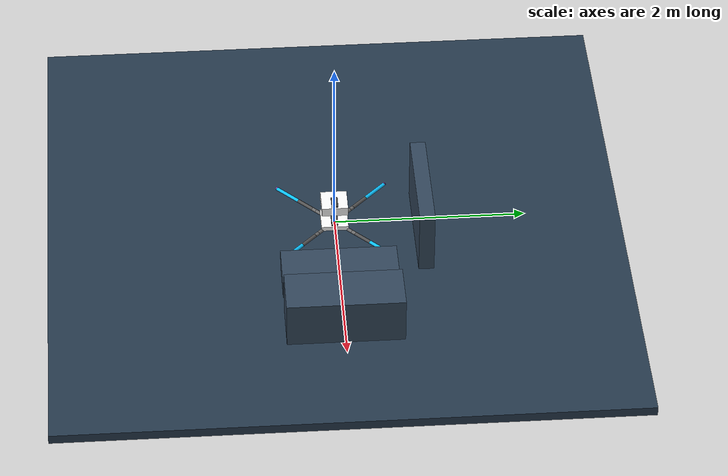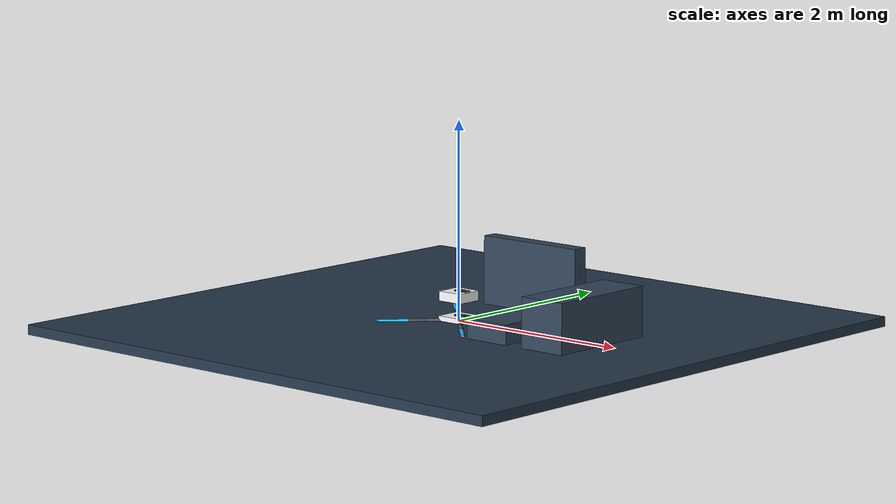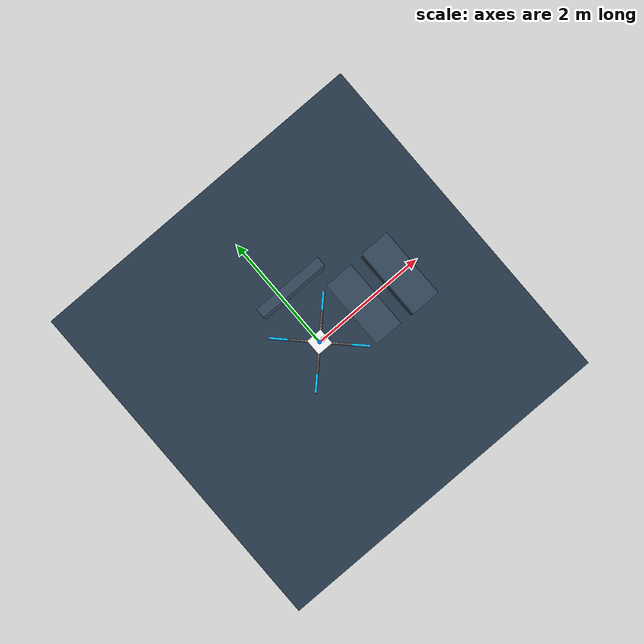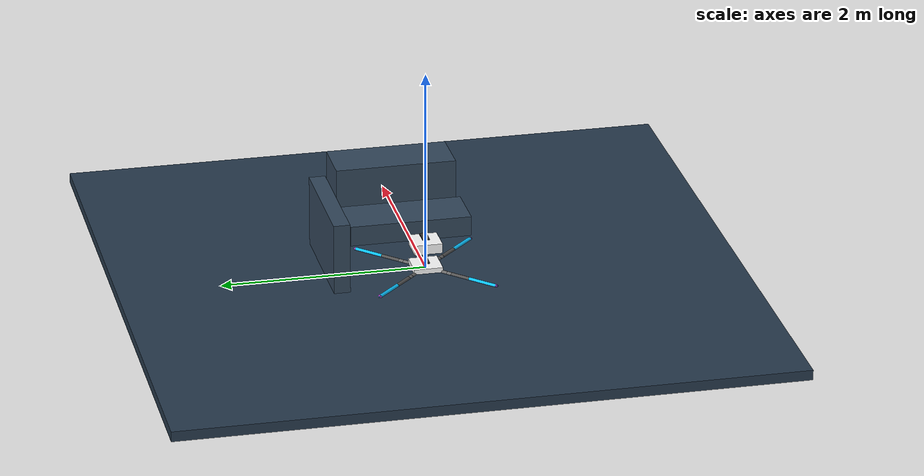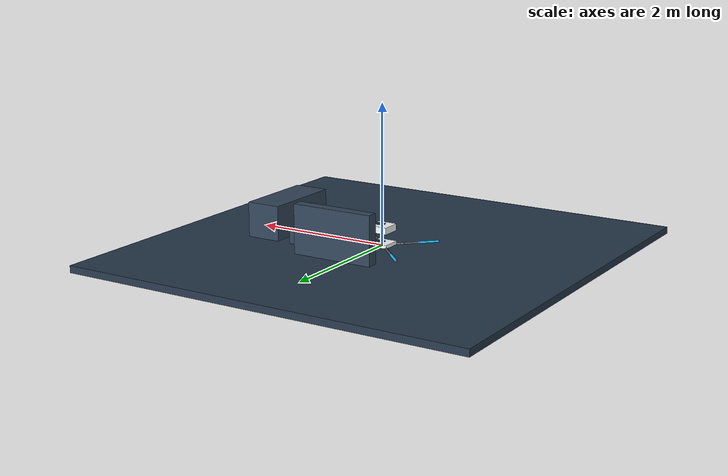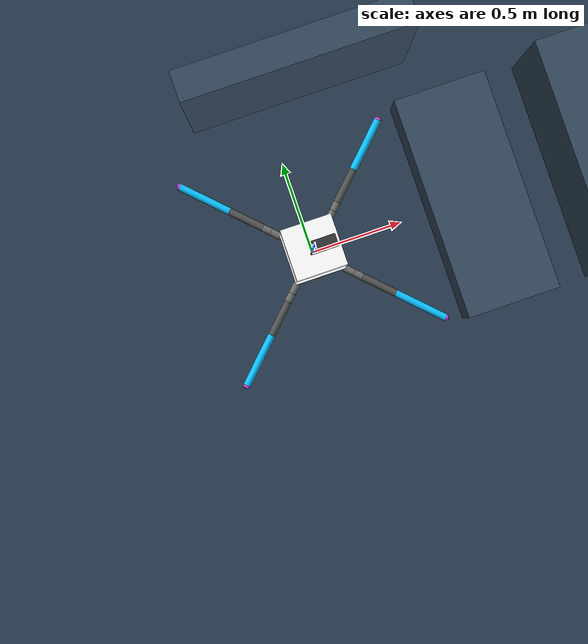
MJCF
<mujoco model="robot">
  <compiler angle="radian" autolimits="true"/>
  <default>
    <geom contype="0" conaffinity="0"/>
    <joint type="hinge"/>
    <default class="link"><geom type="capsule" size="0.02"/></default>
    <default class="foot"><geom type="sphere" size="0.02" material="foot"/></default>
    <default class="base"><geom type="box" material="base"/></default>
    <default class="j0"><joint axis="0 0 1" range="-1.57079637 1.57079637"/></default>
    <default class="j1"><joint axis="1 0 0" range="-3.14159274 3.14159274"/></default>
    <default class="j2"><joint axis="0 1 0" range="-2.61799383 2.61799383"/></default>
    <default class="j3"><joint axis="0 1 0" range="-2.61799383 2.61799383"/></default>
  </default>
  <asset>
    <material name="base"  rgba="1 1 1 1"/>
    <material name="coxa"  rgba="0.42 0.42 0.42 1"/>
    <material name="femur" rgba="0.32 0.32 0.32 1"/>
    <material name="tibia" rgba="0.039216 0.760784 1 1"/>
    <material name="foot"  rgba="1 0.258824 0.976471 1"/>
    <material name="terrain" rgba="0.2 0.28 0.36 1"/>
    <texture type="skybox" builtin="gradient" rgb1="0.3 0.5 0.7" rgb2="0 0 0" width="512" height="512"/>
    <texture name="grid" type="2d" builtin="checker" rgb1="0.2 0.3 0.4" rgb2="0.1 0.15 0.2" width="512" height="512"/>
    <material name="grid" texture="grid" texrepeat="10 10"/>
  </asset>
  <worldbody>
    <body name="base" pos="0 0 0">
      <freejoint name="root"/>
      <geom name="body_nose" type="box" pos="0.0494975 -7.45058e-09 0.056" size="0.0777817 0.0353553 0.006" rgba="0.2 0.2 0.2 1"/>
      <geom class="base" name="base" pos="0 -7.4505806e-09 0" size="0.141421363 0.141421378 0.0500000007"/>
<body name="leg0_0" pos="0.141421363 0.141421363 0" quat="0.923879504 0 0 0.382683456">
  <joint class="j0" name="leg0_j0"/>
  <geom class="link" fromto="0 0 0 0.0500000007 0 0" material="coxa"/>
<body name="leg0_1" pos="0.0500000007 0 0" quat="1 0 0 0">
  <joint class="j1" name="leg0_j1"/>
  <geom class="link" fromto="0 0 0 0.0500000007 0 0" material="coxa"/>
<body name="leg0_2" pos="0.0500000007 0 0" quat="1 0 0 0">
  <joint class="j2" name="leg0_j2"/>
  <geom class="link" fromto="0 0 0 0.200000003 0 0" material="femur"/>
<body name="leg0_3" pos="0.200000003 0 0" quat="1 0 0 0">
  <joint class="j3" name="leg0_j3"/>
  <geom class="link" fromto="0 0 0 0.300000012 0 0" material="tibia"/>
<body name="foot0" pos="0.300000012 0 0" quat="1 0 0 0">
  <geom class="foot" name="foot0"/>
</body>
</body></body></body></body>
<body name="leg1_0" pos="-0.141421363 0.141421363 0" quat="0.382683307 0 0 0.923879564">
  <joint class="j0" name="leg1_j0"/>
  <geom class="link" fromto="0 0 0 0.0500000007 0 0" material="coxa"/>
<body name="leg1_1" pos="0.0500000007 0 0" quat="1 0 0 0">
  <joint class="j1" name="leg1_j1"/>
  <geom class="link" fromto="0 0 0 0.0500000007 0 0" material="coxa"/>
<body name="leg1_2" pos="0.0500000007 0 0" quat="1 0 0 0">
  <joint class="j2" name="leg1_j2"/>
  <geom class="link" fromto="0 0 0 0.200000003 0 0" material="femur"/>
<body name="leg1_3" pos="0.200000003 0 0" quat="1 0 0 0">
  <joint class="j3" name="leg1_j3"/>
  <geom class="link" fromto="0 0 0 0.300000012 0 0" material="tibia"/>
<body name="foot1" pos="0.300000012 0 0" quat="1 0 0 0">
  <geom class="foot" name="foot1"/>
</body>
</body></body></body></body>
<body name="leg2_0" pos="-0.141421363 -0.141421348 0" quat="0.382683307 0 0 -0.923879564">
  <joint class="j0" name="leg2_j0"/>
  <geom class="link" fromto="0 0 0 0.0500000007 0 0" material="coxa"/>
<body name="leg2_1" pos="0.0500000007 0 0" quat="1 0 0 0">
  <joint class="j1" name="leg2_j1"/>
  <geom class="link" fromto="0 0 0 0.0500000007 0 0" material="coxa"/>
<body name="leg2_2" pos="0.0500000007 0 0" quat="1 0 0 0">
  <joint class="j2" name="leg2_j2"/>
  <geom class="link" fromto="0 0 0 0.200000003 0 0" material="femur"/>
<body name="leg2_3" pos="0.200000003 0 0" quat="1 0 0 0">
  <joint class="j3" name="leg2_j3"/>
  <geom class="link" fromto="0 0 0 0.300000012 0 0" material="tibia"/>
<body name="foot2" pos="0.300000012 0 0" quat="1 0 0 0">
  <geom class="foot" name="foot2"/>
</body>
</body></body></body></body>
<body name="leg3_0" pos="0.141421333 -0.141421378 0" quat="0.923879445 0 0 -0.382683694">
  <joint class="j0" name="leg3_j0"/>
  <geom class="link" fromto="0 0 0 0.0500000007 0 0" material="coxa"/>
<body name="leg3_1" pos="0.0500000007 0 0" quat="1 0 0 0">
  <joint class="j1" name="leg3_j1"/>
  <geom class="link" fromto="0 0 0 0.0500000007 0 0" material="coxa"/>
<body name="leg3_2" pos="0.0500000007 0 0" quat="1 0 0 0">
  <joint class="j2" name="leg3_j2"/>
  <geom class="link" fromto="0 0 0 0.200000003 0 0" material="femur"/>
<body name="leg3_3" pos="0.200000003 0 0" quat="1 0 0 0">
  <joint class="j3" name="leg3_j3"/>
  <geom class="link" fromto="0 0 0 0.300000012 0 0" material="tibia"/>
<body name="foot3" pos="0.300000012 0 0" quat="1 0 0 0">
  <geom class="foot" name="foot3"/>
</body>
</body></body></body></body>
    </body>
    <geom name="ground0" type="box" pos="0 0 -0.05" size="3 3 0.05" material="grid"/>
    <geom name="terrain0" type="box" pos="0.9 0 0.1" size="0.25 0.6 0.1" material="terrain"/>
    <geom name="terrain1" type="box" pos="1.6 0 0.25" size="0.25 0.6 0.25" material="terrain"/>
    <geom name="terrain2" type="box" pos="0.2 0.9 0.35" size="0.6 0.08 0.35" material="terrain"/>
    <light pos="0 0 3" dir="0 0 -1" diffuse="0.8 0.8 0.8"/>
    <body name="target" mocap="true" pos="0 0 0.25">
      <geom type="box" pos="0 -7.22706e-09 0" size="0.137179 0.137179 0.0485" material="base"/>
      <geom type="box" pos="0.0480126 -7.22706e-09 0.0545" size="0.0754483 0.0342947 0.006" rgba="0.2 0.2 0.2 1"/>
    </body>
  </worldbody>
</mujoco>
